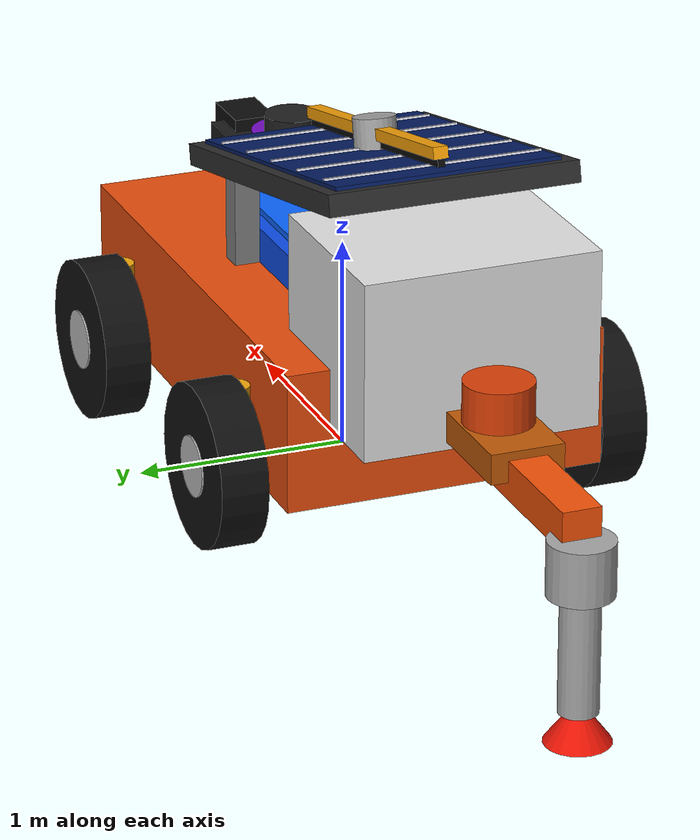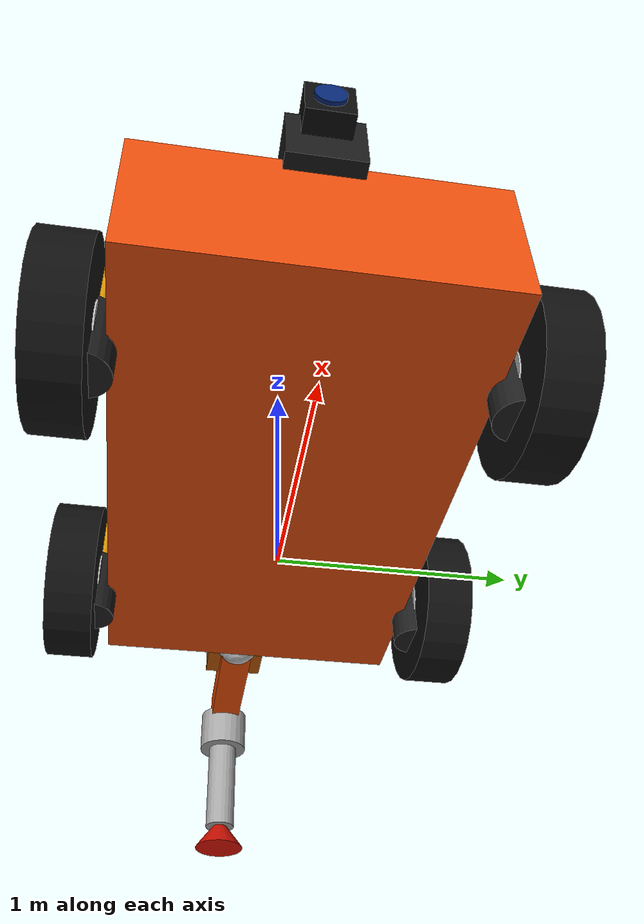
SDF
<?xml version="1.0"?>
<sdf version="1.10">
  <model name="mars_rover">

    <static>false</static>
    <self_collide>false</self_collide>
    <allow_auto_disable>false</allow_auto_disable>

    <!-- MAIN BODY / CENTRAL BRAIN -->

    <link name="base_link">

      <pose>0 0 0.62 0 0 0</pose>

      <inertial>
        <mass>80</mass>
        <inertia>
          <ixx>18</ixx>
          <iyy>28</iyy>
          <izz>35</izz>
          <ixy>0</ixy>
          <ixz>0</ixz>
          <iyz>0</iyz>
        </inertia>
      </inertial>

      <collision name="body_collision">
        <geometry>
          <box>
            <size>2.5 1.5 0.65</size>
          </box>
        </geometry>
      </collision>

      <visual name="body_visual">

        <geometry>
          <box>
            <size>2.5 1.5 0.65</size>
          </box>
        </geometry>

        <material>
          <ambient>0.70 0.20 0.04 1</ambient>
          <diffuse>0.90 0.30 0.05 1</diffuse>
          <specular>0.25 0.25 0.25 1</specular>
        </material>

      </visual>

      <!-- Central brain enclosure -->

      <visual name="brain_enclosure_visual">

        <pose>0 0 0.38 0 0 0</pose>

        <geometry>
          <box>
            <size>0.95 0.78 0.22</size>
          </box>
        </geometry>

        <material>
          <ambient>0.03 0.15 0.55 1</ambient>
          <diffuse>0.05 0.30 0.90 1</diffuse>
          <specular>0.5 0.5 0.5 1</specular>
        </material>

      </visual>

    </link>

    <!-- BRAIN / MICROCONTROLLER COMPARTMENT -->

    <link name="brain_link">

      <pose>0 0 1.03 0 0 0</pose>

      <inertial>

        <mass>5</mass>

        <inertia>
          <ixx>0.2</ixx>
          <iyy>0.25</iyy>
          <izz>0.3</izz>
          <ixy>0</ixy>
          <ixz>0</ixz>
          <iyz>0</iyz>
        </inertia>

      </inertial>

      <visual name="brain_visual">

        <geometry>
          <box>
            <size>0.85 0.65 0.22</size>
          </box>
        </geometry>

        <material>
          <ambient>0.02 0.20 0.80 1</ambient>
          <diffuse>0.04 0.40 1.00 1</diffuse>
          <specular>0.7 0.7 0.7 1</specular>
        </material>

      </visual>

      <collision name="brain_collision">

        <geometry>
          <box>
            <size>0.85 0.65 0.22</size>
          </box>
        </geometry>

      </collision>

    </link>

    <joint name="brain_fixed_joint"
           type="fixed">

      <parent>base_link</parent>
      <child>brain_link</child>

    </joint>

    <!-- CAMERA -->

    <link name="camera_mount">

      <pose>1.18 0 1.02 0 0 0</pose>

      <visual name="mount_visual">

        <geometry>
          <box>
            <size>0.28 0.32 0.28</size>
          </box>
        </geometry>

        <material>
          <ambient>0.04 0.04 0.04 1</ambient>
          <diffuse>0.10 0.10 0.10 1</diffuse>
          <specular>0.3 0.3 0.3 1</specular>
        </material>

      </visual>

    </link>

    <joint name="camera_mount_joint"
           type="fixed">

      <parent>base_link</parent>
      <child>camera_mount</child>

    </joint>

    <link name="camera_link">

      <pose>1.28 0 1.12 0 0 0</pose>

      <visual name="camera_body">

        <geometry>
          <box>
            <size>0.28 0.20 0.20</size>
          </box>
        </geometry>

        <material>
          <ambient>0.02 0.02 0.02 1</ambient>
          <diffuse>0.05 0.05 0.05 1</diffuse>
          <specular>0.8 0.8 0.8 1</specular>
        </material>

      </visual>

      <visual name="camera_lens">

        <pose>0.145 0 0 0 1.5708 0</pose>

        <geometry>
          <cylinder>
            <radius>0.065</radius>
            <length>0.025</length>
          </cylinder>
        </geometry>

        <material>
          <ambient>0.01 0.05 0.12 1</ambient>
          <diffuse>0.02 0.15 0.45 1</diffuse>
          <specular>1 1 1 1</specular>
        </material>

      </visual>

      <sensor name="front_camera"
              type="camera">

        <always_on>true</always_on>
        <update_rate>30</update_rate>
        <visualize>true</visualize>

        <topic>/rover/camera/image_raw</topic>

        <camera>

          <horizontal_fov>1.047</horizontal_fov>

          <image>
            <width>1280</width>
            <height>720</height>
            <format>R8G8B8</format>
          </image>

          <clip>
            <near>0.05</near>
            <far>100</far>
          </clip>

        </camera>

      </sensor>

    </link>

    <joint name="camera_joint"
           type="fixed">

      <parent>camera_mount</parent>
      <child>camera_link</child>

    </joint>

    <!-- LIDAR -->

<!-- LIDAR SUPPORT -->

<link name="lidar_support">

  <!-- Support rises from the rover body -->
  <pose>0.65 0 0.94 0 0 0</pose>

  <inertial>
    <mass>1.5</mass>
    <inertia>
      <ixx>0.03</ixx>
      <iyy>0.03</iyy>
      <izz>0.03</izz>
      <ixy>0</ixy>
      <ixz>0</ixz>
      <iyz>0</iyz>
    </inertia>
  </inertial>

  <!-- Vertical support -->
  <visual name="support">

    <geometry>
      <cylinder>
        <radius>0.09</radius>
        <length>0.55</length>
      </cylinder>
    </geometry>

    <material>
      <ambient>0.45 0.45 0.45 1</ambient>
      <diffuse>0.65 0.65 0.65 1</diffuse>
      <specular>0.8 0.8 0.8 1</specular>
    </material>

  </visual>

  <!-- Bottom mounting plate -->
  <visual name="bottom_mount">

    <pose>0 0 -0.27 0 0 0</pose>

    <geometry>
      <cylinder>
        <radius>0.20</radius>
        <length>0.06</length>
      </cylinder>
    </geometry>

    <material>
      <ambient>0.15 0.15 0.15 1</ambient>
      <diffuse>0.30 0.30 0.30 1</diffuse>
      <specular>0.7 0.7 0.7 1</specular>
    </material>

  </visual>

  <!-- Top mounting plate -->
  <visual name="top_mount">

    <pose>0 0 0.27 0 0 0</pose>

    <geometry>
      <cylinder>
        <radius>0.20</radius>
        <length>0.06</length>
      </cylinder>
    </geometry>

    <material>
      <ambient>0.15 0.15 0.15 1</ambient>
      <diffuse>0.30 0.30 0.30 1</diffuse>
      <specular>0.7 0.7 0.7 1</specular>
    </material>

  </visual>

</link>

<joint name="lidar_support_joint"
       type="fixed">

  <parent>base_link</parent>
  <child>lidar_support</child>

</joint>

<!-- LIDAR -->

    <link name="lidar_link">

    <pose>0.65 0 1.28 0 0 0</pose>

    <inertial>

        <mass>2</mass>

        <inertia>
        <ixx>0.04</ixx>
        <iyy>0.04</iyy>
        <izz>0.06</izz>
        <ixy>0</ixy>
        <ixz>0</ixz>
        <iyz>0</iyz>
        </inertia>

    </inertial>

    <!-- Main LiDAR body -->

    <visual name="lidar_base">

        <geometry>
        <cylinder>
            <radius>0.19</radius>
            <length>0.10</length>
        </cylinder>
        </geometry>

        <material>
        <ambient>0.20 0.03 0.35 1</ambient>
        <diffuse>0.45 0.05 0.75 1</diffuse>
        <specular>0.8 0.8 0.8 1</specular>
        </material>

    </visual>

    <!-- Rotating top -->

    <visual name="lidar_top">

        <pose>0 0 0.09 0 0 0</pose>

        <geometry>
        <cylinder>
            <radius>0.13</radius>
            <length>0.08</length>
        </cylinder>
        </geometry>

        <material>
        <ambient>0.04 0.04 0.04 1</ambient>
        <diffuse>0.12 0.12 0.12 1</diffuse>
        <specular>0.9 0.9 0.9 1</specular>
        </material>

    </visual>

    <sensor name="lidar_sensor"
            type="gpu_lidar">

        <always_on>true</always_on>

        <update_rate>15</update_rate>

        <visualize>true</visualize>

        <topic>/rover/lidar/points</topic>

        <lidar>

        <scan>

            <horizontal>

            <samples>720</samples>

            <resolution>1</resolution>

            <min_angle>-3.14159</min_angle>

            <max_angle>3.14159</max_angle>

            </horizontal>

            <vertical>

            <samples>16</samples>

            <resolution>1</resolution>

            <min_angle>-0.26</min_angle>

            <max_angle>0.26</max_angle>

            </vertical>

        </scan>

        <range>

            <min>0.15</min>

            <max>50</max>

            <resolution>0.01</resolution>

        </range>

        </lidar>

    </sensor>

    </link>

    <joint name="lidar_joint"
        type="fixed">

    <parent>lidar_support</parent>

    <child>lidar_link</child>

    </joint>

    <!-- LEFT FRONT SUSPENSION -->

    <link name="left_front_suspension">

      <pose>0.78 0.82 0.52 0 0 0</pose>

      <inertial>

        <mass>2</mass>

        <inertia>
          <ixx>0.05</ixx>
          <iyy>0.05</iyy>
          <izz>0.05</izz>
          <ixy>0</ixy>
          <ixz>0</ixz>
          <iyz>0</iyz>
        </inertia>

      </inertial>

      <visual name="suspension_strut">

        <geometry>
          <cylinder>
            <radius>0.07</radius>
            <length>0.42</length>
          </cylinder>
        </geometry>

        <material>
          <ambient>0.55 0.30 0.02 1</ambient>
          <diffuse>0.95 0.65 0.04 1</diffuse>
          <specular>0.6 0.6 0.6 1</specular>
        </material>

      </visual>

      <visual name="spring">

        <pose>0 0 -0.20 0 0 0</pose>

        <geometry>
          <cylinder>
            <radius>0.11</radius>
            <length>0.32</length>
          </cylinder>
        </geometry>

        <material>
          <ambient>0.05 0.05 0.05 1</ambient>
          <diffuse>0.12 0.12 0.12 1</diffuse>
          <specular>0.8 0.8 0.8 1</specular>
        </material>

      </visual>

    </link>

    <joint name="left_front_suspension_joint"
           type="prismatic">

      <parent>base_link</parent>
      <child>left_front_suspension</child>

      <axis>

        <xyz>0 0 1</xyz>

        <limit>
          <lower>-0.16</lower>
          <upper>0.16</upper>
        </limit>

        <dynamics>
          <damping>450</damping>
          <friction>25</friction>
        </dynamics>

      </axis>

    </joint>

    <!-- LEFT FRONT WHEEL -->

    <link name="left_front_wheel">

      <pose>0.78 0.91 0.37 1.5708 0 0</pose>

      <inertial>

        <mass>5</mass>

        <inertia>
          <ixx>0.15</ixx>
          <iyy>0.15</iyy>
          <izz>0.25</izz>
          <ixy>0</ixy>
          <ixz>0</ixz>
          <iyz>0</iyz>
        </inertia>

      </inertial>

      <collision name="collision">

        <geometry>
          <cylinder>
            <radius>0.38</radius>
            <length>0.22</length>
          </cylinder>
        </geometry>

      </collision>

      <visual name="wheel">

        <geometry>
          <cylinder>
            <radius>0.38</radius>
            <length>0.22</length>
          </cylinder>
        </geometry>

        <material>
          <ambient>0.025 0.025 0.025 1</ambient>
          <diffuse>0.06 0.06 0.06 1</diffuse>
          <specular>0.15 0.15 0.15 1</specular>
        </material>

      </visual>

      <visual name="hub">

        <geometry>
          <cylinder>
            <radius>0.14</radius>
            <length>0.235</length>
          </cylinder>
        </geometry>

        <material>
          <ambient>0.55 0.55 0.55 1</ambient>
          <diffuse>0.75 0.75 0.75 1</diffuse>
          <specular>0.9 0.9 0.9 1</specular>
        </material>

      </visual>

    </link>

    <joint name="left_front_wheel_joint"
           type="revolute">

      <parent>left_front_suspension</parent>
      <child>left_front_wheel</child>

      <axis>

        <xyz>0 1 0</xyz>

        <dynamics>
          <damping>0.5</damping>
          <friction>0.08</friction>
        </dynamics>

      </axis>

    </joint>

    <!-- RIGHT FRONT SUSPENSION -->

    <link name="right_front_suspension">

      <pose>0.78 -0.82 0.52 0 0 0</pose>

      <inertial>
        <mass>2</mass>
        <inertia>
          <ixx>0.05</ixx>
          <iyy>0.05</iyy>
          <izz>0.05</izz>
          <ixy>0</ixy>
          <ixz>0</ixz>
          <iyz>0</iyz>
        </inertia>
      </inertial>

      <visual name="suspension_strut">

        <geometry>
          <cylinder>
            <radius>0.07</radius>
            <length>0.42</length>
          </cylinder>
        </geometry>

        <material>
          <ambient>0.55 0.30 0.02 1</ambient>
          <diffuse>0.95 0.65 0.04 1</diffuse>
          <specular>0.6 0.6 0.6 1</specular>
        </material>

      </visual>

      <visual name="spring">

        <pose>0 0 -0.20 0 0 0</pose>

        <geometry>
          <cylinder>
            <radius>0.11</radius>
            <length>0.32</length>
          </cylinder>
        </geometry>

        <material>
          <ambient>0.05 0.05 0.05 1</ambient>
          <diffuse>0.12 0.12 0.12 1</diffuse>
          <specular>0.8 0.8 0.8 1</specular>
        </material>

      </visual>

    </link>

    <joint name="right_front_suspension_joint"
           type="prismatic">

      <parent>base_link</parent>
      <child>right_front_suspension</child>

      <axis>

        <xyz>0 0 1</xyz>

        <limit>
          <lower>-0.16</lower>
          <upper>0.16</upper>
        </limit>

        <dynamics>
          <damping>450</damping>
          <friction>25</friction>
        </dynamics>

      </axis>

    </joint>

    <!-- RIGHT FRONT WHEEL -->

    <link name="right_front_wheel">

      <pose>0.78 -0.91 0.37 1.5708 0 0</pose>

      <inertial>

        <mass>5</mass>

        <inertia>
          <ixx>0.15</ixx>
          <iyy>0.15</iyy>
          <izz>0.25</izz>
          <ixy>0</ixy>
          <ixz>0</ixz>
          <iyz>0</iyz>
        </inertia>

      </inertial>

      <collision name="collision">

        <geometry>
          <cylinder>
            <radius>0.38</radius>
            <length>0.22</length>
          </cylinder>
        </geometry>

      </collision>

      <visual name="wheel">

        <geometry>
          <cylinder>
            <radius>0.38</radius>
            <length>0.22</length>
          </cylinder>
        </geometry>

        <material>
          <ambient>0.025 0.025 0.025 1</ambient>
          <diffuse>0.06 0.06 0.06 1</diffuse>
          <specular>0.15 0.15 0.15 1</specular>
        </material>

      </visual>

      <visual name="hub">

        <geometry>
          <cylinder>
            <radius>0.14</radius>
            <length>0.235</length>
          </cylinder>
        </geometry>

        <material>
          <ambient>0.55 0.55 0.55 1</ambient>
          <diffuse>0.75 0.75 0.75 1</diffuse>
          <specular>0.9 0.9 0.9 1</specular>
        </material>

      </visual>

    </link>

    <joint name="right_front_wheel_joint"
           type="revolute">

      <parent>right_front_suspension</parent>
      <child>right_front_wheel</child>

      <axis>

        <xyz>0 1 0</xyz>

        <dynamics>
          <damping>0.5</damping>
          <friction>0.08</friction>
        </dynamics>

      </axis>

    </joint>

    <!-- LEFT REAR SUSPENSION -->

    <link name="left_rear_suspension">

      <pose>-0.78 0.82 0.52 0 0 0</pose>

      <inertial>
        <mass>2</mass>
        <inertia>
          <ixx>0.05</ixx>
          <iyy>0.05</iyy>
          <izz>0.05</izz>
          <ixy>0</ixy>
          <ixz>0</ixz>
          <iyz>0</iyz>
        </inertia>
      </inertial>

      <visual name="suspension_strut">

        <geometry>
          <cylinder>
            <radius>0.07</radius>
            <length>0.42</length>
          </cylinder>
        </geometry>

        <material>
          <ambient>0.55 0.30 0.02 1</ambient>
          <diffuse>0.95 0.65 0.04 1</diffuse>
          <specular>0.6 0.6 0.6 1</specular>
        </material>

      </visual>

      <visual name="spring">

        <pose>0 0 -0.20 0 0 0</pose>

        <geometry>
          <cylinder>
            <radius>0.11</radius>
            <length>0.32</length>
          </cylinder>
        </geometry>

        <material>
          <ambient>0.05 0.05 0.05 1</ambient>
          <diffuse>0.12 0.12 0.12 1</diffuse>
          <specular>0.8 0.8 0.8 1</specular>
        </material>

      </visual>

    </link>

    <joint name="left_rear_suspension_joint"
           type="prismatic">

      <parent>base_link</parent>
      <child>left_rear_suspension</child>

      <axis>

        <xyz>0 0 1</xyz>

        <limit>
          <lower>-0.16</lower>
          <upper>0.16</upper>
        </limit>

        <dynamics>
          <damping>450</damping>
          <friction>25</friction>
        </dynamics>

      </axis>

    </joint>

    <!-- LEFT REAR WHEEL -->

    <link name="left_rear_wheel">

      <pose>-0.78 0.91 0.37 1.5708 0 0</pose>

      <inertial>

        <mass>5</mass>

        <inertia>
          <ixx>0.15</ixx>
          <iyy>0.15</iyy>
          <izz>0.25</izz>
          <ixy>0</ixy>
          <ixz>0</ixz>
          <iyz>0</iyz>
        </inertia>

      </inertial>

      <collision name="collision">

        <geometry>
          <cylinder>
            <radius>0.38</radius>
            <length>0.22</length>
          </cylinder>
        </geometry>

      </collision>

      <visual name="wheel">

        <geometry>
          <cylinder>
            <radius>0.38</radius>
            <length>0.22</length>
          </cylinder>
        </geometry>

        <material>
          <ambient>0.025 0.025 0.025 1</ambient>
          <diffuse>0.06 0.06 0.06 1</diffuse>
          <specular>0.15 0.15 0.15 1</specular>
        </material>

      </visual>

      <visual name="hub">

        <geometry>
          <cylinder>
            <radius>0.14</radius>
            <length>0.235</length>
          </cylinder>
        </geometry>

        <material>
          <ambient>0.55 0.55 0.55 1</ambient>
          <diffuse>0.75 0.75 0.75 1</diffuse>
          <specular>0.9 0.9 0.9 1</specular>
        </material>

      </visual>

    </link>

    <joint name="left_rear_wheel_joint"
           type="revolute">

      <parent>left_rear_suspension</parent>
      <child>left_rear_wheel</child>

      <axis>

        <xyz>0 1 0</xyz>

        <dynamics>
          <damping>0.5</damping>
          <friction>0.08</friction>
        </dynamics>

      </axis>

    </joint>

    <!-- RIGHT REAR SUSPENSION -->

    <link name="right_rear_suspension">

      <pose>-0.78 -0.82 0.52 0 0 0</pose>

      <inertial>
        <mass>2</mass>
        <inertia>
          <ixx>0.05</ixx>
          <iyy>0.05</iyy>
          <izz>0.05</izz>
          <ixy>0</ixy>
          <ixz>0</ixz>
          <iyz>0</iyz>
        </inertia>
      </inertial>

      <visual name="suspension_strut">

        <geometry>
          <cylinder>
            <radius>0.07</radius>
            <length>0.42</length>
          </cylinder>
        </geometry>

        <material>
          <ambient>0.55 0.30 0.02 1</ambient>
          <diffuse>0.95 0.65 0.04 1</diffuse>
          <specular>0.6 0.6 0.6 1</specular>
        </material>

      </visual>

      <visual name="spring">

        <pose>0 0 -0.20 0 0 0</pose>

        <geometry>
          <cylinder>
            <radius>0.11</radius>
            <length>0.32</length>
          </cylinder>
        </geometry>

        <material>
          <ambient>0.05 0.05 0.05 1</ambient>
          <diffuse>0.12 0.12 0.12 1</diffuse>
          <specular>0.8 0.8 0.8 1</specular>
        </material>

      </visual>

    </link>

    <joint name="right_rear_suspension_joint"
           type="prismatic">

      <parent>base_link</parent>
      <child>right_rear_suspension</child>

      <axis>

        <xyz>0 0 1</xyz>

        <limit>
          <lower>-0.16</lower>
          <upper>0.16</upper>
        </limit>

        <dynamics>
          <damping>450</damping>
          <friction>25</friction>
        </dynamics>

      </axis>

    </joint>

    <!-- RIGHT REAR WHEEL -->

    <link name="right_rear_wheel">

      <pose>-0.78 -0.91 0.37 1.5708 0 0</pose>

      <inertial>

        <mass>5</mass>

        <inertia>
          <ixx>0.15</ixx>
          <iyy>0.15</iyy>
          <izz>0.25</izz>
          <ixy>0</ixy>
          <ixz>0</ixz>
          <iyz>0</iyz>
        </inertia>

      </inertial>

      <collision name="collision">

        <geometry>
          <cylinder>
            <radius>0.38</radius>
            <length>0.22</length>
          </cylinder>
        </geometry>

      </collision>

      <visual name="wheel">

        <geometry>
          <cylinder>
            <radius>0.38</radius>
            <length>0.22</length>
          </cylinder>
        </geometry>

        <material>
          <ambient>0.025 0.025 0.025 1</ambient>
          <diffuse>0.06 0.06 0.06 1</diffuse>
          <specular>0.15 0.15 0.15 1</specular>
        </material>

      </visual>

      <visual name="hub">

        <geometry>
          <cylinder>
            <radius>0.14</radius>
            <length>0.235</length>
          </cylinder>
        </geometry>

        <material>
          <ambient>0.55 0.55 0.55 1</ambient>
          <diffuse>0.75 0.75 0.75 1</diffuse>
          <specular>0.9 0.9 0.9 1</specular>
        </material>

      </visual>

    </link>

    <joint name="right_rear_wheel_joint"
           type="revolute">

      <parent>right_rear_suspension</parent>
      <child>right_rear_wheel</child>

      <axis>

        <xyz>0 1 0</xyz>

        <dynamics>
          <damping>0.5</damping>
          <friction>0.08</friction>
        </dynamics>

      </axis>

    </joint>

    <!-- SOLAR PANEL -->

    <!-- SOLAR PANEL SUPPORTS -->

    <link name="solar_support_left">

    <pose>0.10 0.45 1.12 0 0 0</pose>

    <inertial>

        <mass>1.5</mass>

        <inertia>
        <ixx>0.03</ixx>
        <iyy>0.03</iyy>
        <izz>0.03</izz>
        <ixy>0</ixy>
        <ixz>0</ixz>
        <iyz>0</iyz>
        </inertia>

    </inertial>

    <visual name="support">

        <geometry>
        <box>
            <size>0.12 0.12 0.55</size>
        </box>
        </geometry>

        <material>

        <ambient>0.30 0.30 0.30 1</ambient>

        <diffuse>0.50 0.50 0.50 1</diffuse>

        <specular>0.8 0.8 0.8 1</specular>

        </material>

    </visual>

    </link>

    <link name="solar_support_right">

    <pose>0.10 -0.45 1.12 0 0 0</pose>

    <inertial>

        <mass>1.5</mass>

        <inertia>
        <ixx>0.03</ixx>
        <iyy>0.03</iyy>
        <izz>0.03</izz>
        <ixy>0</ixy>
        <ixz>0</ixz>
        <iyz>0</iyz>
        </inertia>

    </inertial>

    <visual name="support">

        <geometry>
        <box>
            <size>0.12 0.12 0.55</size>
        </box>
        </geometry>

        <material>

        <ambient>0.30 0.30 0.30 1</ambient>

        <diffuse>0.50 0.50 0.50 1</diffuse>

        <specular>0.8 0.8 0.8 1</specular>

        </material>

    </visual>

    </link>

    <!-- Left support fixed to body -->

    <joint name="solar_support_left_joint"
        type="fixed">

    <parent>base_link</parent>

    <child>solar_support_left</child>

    </joint>

    <!-- Right support fixed to body -->

    <joint name="solar_support_right_joint"
        type="fixed">

    <parent>base_link</parent>

    <child>solar_support_right</child>

    </joint>

    <!-- TILTED SOLAR PANEL -->

    <link name="solar_panel">

    <!--
        Panel is approximately 12 degrees tilted.
        Rotation around Y axis.
    -->

    <pose>-0.45 0 1.55 0 0.21 0</pose>

    <inertial>

        <mass>8</mass>

        <inertia>

        <ixx>0.8</ixx>

        <iyy>1.0</iyy>

        <izz>0.3</izz>

        <ixy>0</ixy>

        <ixz>0</ixz>

        <iyz>0</iyz>

        </inertia>

    </inertial>

    <!-- Panel frame -->

    <visual name="panel_frame">

        <geometry>

        <box>

            <size>1.80 1.17 0.10</size>

        </box>

        </geometry>

        <material>

        <ambient>0.08 0.08 0.08 1</ambient>

        <diffuse>0.18 0.18 0.18 1</diffuse>

        <specular>0.8 0.8 0.8 1</specular>

        </material>

    </visual>

    <!-- Solar surface -->

    <visual name="panel_surface">

        <pose>0 0 0.055 0 0 0</pose>

        <geometry>

        <box>

            <size>1.68 1.05 0.025</size>

        </box>

        </geometry>

        <material>

        <ambient>0.01 0.04 0.12 1</ambient>

        <diffuse>0.02 0.12 0.40 1</diffuse>

        <specular>0.95 0.95 0.95 1</specular>

        </material>

    </visual>

    <!-- Solar cell divisions -->

    <visual name="cell_line_1">

        <pose>-0.65 0 0.072 0 0 0</pose>

        <geometry>

        <box>

            <size>0.015 1.02 0.012</size>

        </box>

        </geometry>

        <material>

        <ambient>0.75 0.75 0.80 1</ambient>

        <diffuse>0.90 0.90 0.95 1</diffuse>

        </material>

    </visual>

    <visual name="cell_line_2">

        <pose>-0.32 0 0.072 0 0 0</pose>

        <geometry>

        <box>

            <size>0.015 1.02 0.012</size>

        </box>

        </geometry>

        <material>

        <ambient>0.75 0.75 0.80 1</ambient>

        <diffuse>0.90 0.90 0.95 1</diffuse>

        </material>

    </visual>

    <visual name="cell_line_3">

        <pose>0 0 0.072 0 0 0</pose>

        <geometry>

        <box>

            <size>0.015 1.02 0.012</size>

        </box>

        </geometry>

        <material>

        <ambient>0.75 0.75 0.80 1</ambient>

        <diffuse>0.90 0.90 0.95 1</diffuse>

        </material>

    </visual>

    <visual name="cell_line_4">

        <pose>0.32 0 0.072 0 0 0</pose>

        <geometry>

        <box>

            <size>0.015 1.02 0.012</size>

        </box>

        </geometry>

        <material>

        <ambient>0.75 0.75 0.80 1</ambient>

        <diffuse>0.90 0.90 0.95 1</diffuse>

        </material>

    </visual>

    <visual name="cell_line_5">

        <pose>0.65 0 0.072 0 0 0</pose>

        <geometry>

        <box>

            <size>0.015 1.02 0.012</size>

        </box>

        </geometry>

        <material>

        <ambient>0.75 0.75 0.80 1</ambient>

        <diffuse>0.90 0.90 0.95 1</diffuse>

        </material>

    </visual>

    </link>

    <!-- SOLAR PANEL MOUNT JOINT -->

    <joint name="solar_panel_joint"
        type="fixed">

    <parent>base_link</parent>

    <child>solar_panel</child>

    </joint>

<!-- SOLAR WIPER MOTOR -->

<link name="wiper_motor">

  <!--
       Motor is mounted at the upper edge of the tilted
       solar panel.
  -->

  <pose>-0.40 0 1.67 0 0.21 0</pose>

  <inertial>

    <mass>1</mass>

    <inertia>

      <ixx>0.01</ixx>
      <iyy>0.01</iyy>
      <izz>0.01</izz>

      <ixy>0</ixy>
      <ixz>0</ixz>
      <iyz>0</iyz>

    </inertia>

  </inertial>

  <!-- Motor housing -->

  <visual name="motor_body">

    <geometry>

      <cylinder>

        <radius>0.10</radius>

        <length>0.16</length>

      </cylinder>

    </geometry>

    <material>

      <ambient>0.30 0.30 0.30 1</ambient>

      <diffuse>0.65 0.65 0.65 1</diffuse>

      <specular>0.9 0.9 0.9 1</specular>

    </material>

  </visual>

</link>

<!-- Motor attached to solar panel -->

<joint name="wiper_motor_joint"
       type="fixed">

  <parent>solar_panel</parent>

  <child>wiper_motor</child>

</joint>

    <!-- SOLAR PANEL WIPER -->

    <link name="solar_wiper">

    <!--
        Same 12 degree tilt as the solar panel.
        Therefore the blade lies against the panel surface.
    -->

    <pose>-0.40 0 1.68 0 0.21 0</pose>

    <inertial>

        <mass>0.8</mass>

        <inertia>

        <ixx>0.01</ixx>
        <iyy>0.01</iyy>
        <izz>0.01</izz>

        <ixy>0</ixy>
        <ixz>0</ixz>
        <iyz>0</iyz>

        </inertia>

    </inertial>

    <!-- Wiper arm -->

    <visual name="wiper_arm">

        <geometry>

        <box>

            <size>1.55 0.07 0.055</size>

        </box>

        </geometry>

        <material>

        <ambient>0.70 0.45 0.02 1</ambient>

        <diffuse>1.0 0.65 0.03 1</diffuse>

        <specular>0.8 0.8 0.8 1</specular>

        </material>

    </visual>

    <!-- Rubber cleaning blade -->

    <visual name="rubber_blade">

        <pose>0 0 -0.045 0 0 0</pose>

        <geometry>

        <box>

            <size>1.55 0.035 0.035</size>

        </box>

        </geometry>

        <material>

        <ambient>0.015 0.015 0.015 1</ambient>

        <diffuse>0.04 0.04 0.04 1</diffuse>

        <specular>0.2 0.2 0.2 1</specular>

        </material>

    </visual>

    </link>

    <!-- WIPER ROTATION JOINT -->

    <joint name="solar_wiper_joint"
        type="revolute">

    <parent>wiper_motor</parent>

    <child>solar_wiper</child>

    <!--
        Rotation axis is perpendicular to the solar panel.
        Because the complete assembly is tilted 12 degrees,
        the wiper rotates along the tilted panel.
    -->

    <axis>

        <xyz>0 0 1</xyz>

        <limit>

        <lower>-1.57</lower>

        <upper>1.57</upper>

        </limit>

        <dynamics>

        <damping>0.5</damping>

        <friction>0.1</friction>

        </dynamics>

    </axis>

    </joint>

    <!-- REAR LABORATORY -->

    <link name="laboratory">

      <pose>-1.20 0 1.08 0 0 0</pose>

      <inertial>

        <mass>15</mass>

        <inertia>
          <ixx>0.7</ixx>
          <iyy>0.8</iyy>
          <izz>1.0</izz>
          <ixy>0</ixy>
          <ixz>0</ixz>
          <iyz>0</iyz>
        </inertia>

      </inertial>

      <collision name="collision">

        <geometry>
          <box>
            <size>0.90 1.10 0.82</size>
          </box>
        </geometry>

      </collision>

      <visual name="lab_body">

        <geometry>
          <box>
            <size>0.90 1.10 0.82</size>
          </box>
        </geometry>

        <material>
          <ambient>0.70 0.70 0.70 1</ambient>
          <diffuse>0.88 0.88 0.88 1</diffuse>
          <specular>0.4 0.4 0.4 1</specular>
        </material>

      </visual>

      <!-- Laboratory window -->

      <visual name="lab_window">

        <pose>0.456 0 0.08 0 1.5708 0</pose>

        <geometry>
          <box>
            <size>0.35 0.60 0.015</size>
          </box>
        </geometry>

        <material>
          <ambient>0.02 0.18 0.30 1</ambient>
          <diffuse>0.04 0.45 0.75 1</diffuse>
          <specular>0.9 0.9 0.9 1</specular>
        </material>

      </visual>

      <!-- Soil sensor -->

      <visual name="soil_sensor">

        <pose>0.46 0 -0.22 0 0 0</pose>

        <geometry>
          <cylinder>
            <radius>0.08</radius>
            <length>0.18</length>
          </cylinder>
        </geometry>

        <material>
          <ambient>0.65 0.10 0.05 1</ambient>
          <diffuse>0.95 0.18 0.05 1</diffuse>
          <specular>0.5 0.5 0.5 1</specular>
        </material>

      </visual>

      <sensor name="soil_contact_sensor"
              type="contact">

        <always_on>true</always_on>
        <update_rate>20</update_rate>

        <topic>
          /rover/laboratory/soil_sensor
        </topic>

      </sensor>

    </link>

    <joint name="laboratory_joint"
           type="fixed">

      <parent>base_link</parent>
      <child>laboratory</child>

    </joint>

    <!-- DRILL APPENDIX BASE -->

    <link name="drill_arm_base">

      <pose>-1.82 0 0.90 0 0 0</pose>

      <visual name="base">

        <geometry>
          <cylinder>
            <radius>0.16</radius>
            <length>0.28</length>
          </cylinder>
        </geometry>

        <material>
          <ambient>0.40 0.12 0.02 1</ambient>
          <diffuse>0.85 0.25 0.03 1</diffuse>
          <specular>0.5 0.5 0.5 1</specular>
        </material>

      </visual>

    </link>

    <joint name="drill_arm_base_joint"
           type="revolute">

      <parent>base_link</parent>
      <child>drill_arm_base</child>

      <axis>

        <xyz>0 1 0</xyz>

      </axis>

      <limit>
        <lower>-1.0</lower>
        <upper>1.0</upper>
      </limit>

    </joint>

    <!-- DRILL ARM -->

    <link name="drill_arm">

      <pose>-2.25 0 0.72 0 0 0</pose>

      <inertial>

        <mass>6</mass>

        <inertia>
          <ixx>0.4</ixx>
          <iyy>0.4</iyy>
          <izz>0.1</izz>
          <ixy>0</ixy>
          <ixz>0</ixz>
          <iyz>0</iyz>
        </inertia>

      </inertial>

      <collision name="collision">

        <geometry>
          <box>
            <size>0.90 0.18 0.18</size>
          </box>
        </geometry>

      </collision>

      <visual name="arm">

        <geometry>
          <box>
            <size>0.90 0.18 0.18</size>
          </box>
        </geometry>

        <material>
          <ambient>0.60 0.15 0.02 1</ambient>
          <diffuse>0.95 0.32 0.03 1</diffuse>
          <specular>0.5 0.5 0.5 1</specular>
        </material>

      </visual>

      <visual name="joint_end">

        <pose>0.44 0 0 0 0 0</pose>

        <geometry>
          <sphere>
            <radius>0.13</radius>
          </sphere>
        </geometry>

        <material>
          <ambient>0.5 0.5 0.5 1</ambient>
          <diffuse>0.75 0.75 0.75 1</diffuse>
          <specular>1 1 1 1</specular>
        </material>

      </visual>

    </link>

    <joint name="drill_arm_joint"
           type="revolute">

      <parent>drill_arm_base</parent>
      <child>drill_arm</child>

      <axis>
        <xyz>0 1 0</xyz>
      </axis>

      <limit>
        <lower>-1.2</lower>
        <upper>0.8</upper>
      </limit>

    </joint>

    <!-- DRILL MOTOR -->

    <link name="drill_motor">

      <pose>-2.70 0 0.55 0 0 0</pose>

      <visual name="motor">

        <geometry>
          <cylinder>
            <radius>0.15</radius>
            <length>0.25</length>
          </cylinder>
        </geometry>

        <material>
          <ambient>0.35 0.35 0.35 1</ambient>
          <diffuse>0.65 0.65 0.65 1</diffuse>
          <specular>0.9 0.9 0.9 1</specular>
        </material>

      </visual>

    </link>

    <joint name="drill_motor_joint"
           type="fixed">

      <parent>drill_arm</parent>
      <child>drill_motor</child>

    </joint>

    <!-- DRILL BIT -->

    <link name="drill">

      <pose>-2.70 0 0.18 0 0 0</pose>

      <inertial>

        <mass>4</mass>

        <inertia>
          <ixx>0.1</ixx>
          <iyy>0.1</iyy>
          <izz>0.1</izz>
          <ixy>0</ixy>
          <ixz>0</ixz>
          <iyz>0</iyz>
        </inertia>

      </inertial>

      <collision name="collision">

        <geometry>
          <cylinder>
            <radius>0.105</radius>
            <length>0.60</length>
          </cylinder>
        </geometry>

      </collision>

      <visual name="shaft">

        <geometry>
          <cylinder>
            <radius>0.09</radius>
            <length>0.60</length>
          </cylinder>
        </geometry>

        <material>
          <ambient>0.35 0.35 0.35 1</ambient>
          <diffuse>0.65 0.65 0.65 1</diffuse>
          <specular>1 1 1 1</specular>
        </material>

      </visual>

      <visual name="tip">

        <pose>0 0 -0.34 0 0 0</pose>

        <geometry>
          <cone>
            <radius>0.15</radius>
            <length>0.20</length>
          </cone>
        </geometry>

        <material>
          <ambient>0.50 0.04 0.02 1</ambient>
          <diffuse>0.90 0.08 0.02 1</diffuse>
          <specular>0.8 0.8 0.8 1</specular>
        </material>

      </visual>

    </link>

    <joint name="drill_joint"
           type="revolute">

      <parent>drill_motor</parent>
      <child>drill</child>

      <axis>

        <xyz>0 0 1</xyz>

        <dynamics>
          <damping>0.2</damping>
          <friction>0.05</friction>
        </dynamics>

      </axis>

    </joint>

    <!-- SAMPLE COLLECTION CHUTE -->

    <link name="sample_chute">

      <pose>-1.78 0 0.78 0 0 0</pose>

      <visual name="chute">

        <geometry>
          <box>
            <size>0.72 0.34 0.14</size>
          </box>
        </geometry>

        <material>
          <ambient>0.45 0.20 0.02 1</ambient>
          <diffuse>0.75 0.35 0.03 1</diffuse>
          <specular>0.4 0.4 0.4 1</specular>
        </material>

      </visual>

    </link>

    <joint name="sample_chute_joint"
           type="fixed">

      <parent>laboratory</parent>
      <child>sample_chute</child>

    </joint>

    <!-- CENTRAL IMU -->

    <link name="imu_link">

      <pose>0 0 1.16 0 0 0</pose>

      <sensor name="imu"
              type="imu">

        <always_on>true</always_on>
        <update_rate>100</update_rate>

        <topic>/rover/imu</topic>

      </sensor>

    </link>

    <joint name="imu_joint"
           type="fixed">

      <parent>brain_link</parent>
      <child>imu_link</child>

    </joint>

    <!-- GAZEBO HARMONIC SYSTEMS -->

    <plugin
      filename="gz-sim-physics-system"
      name="gz::sim::systems::Physics"/>

    <plugin
      filename="gz-sim-user-commands-system"
      name="gz::sim::systems::UserCommands"/>

    <plugin
      filename="gz-sim-scene-broadcaster-system"
      name="gz::sim::systems::SceneBroadcaster"/>

    <plugin
      filename="gz-sim-sensors-system"
      name="gz::sim::systems::Sensors"/>

  </model>
</sdf>
